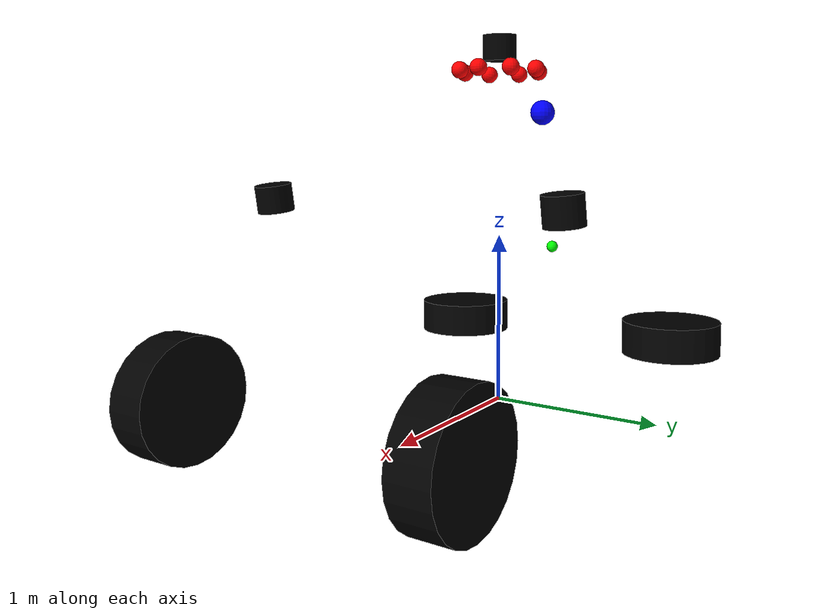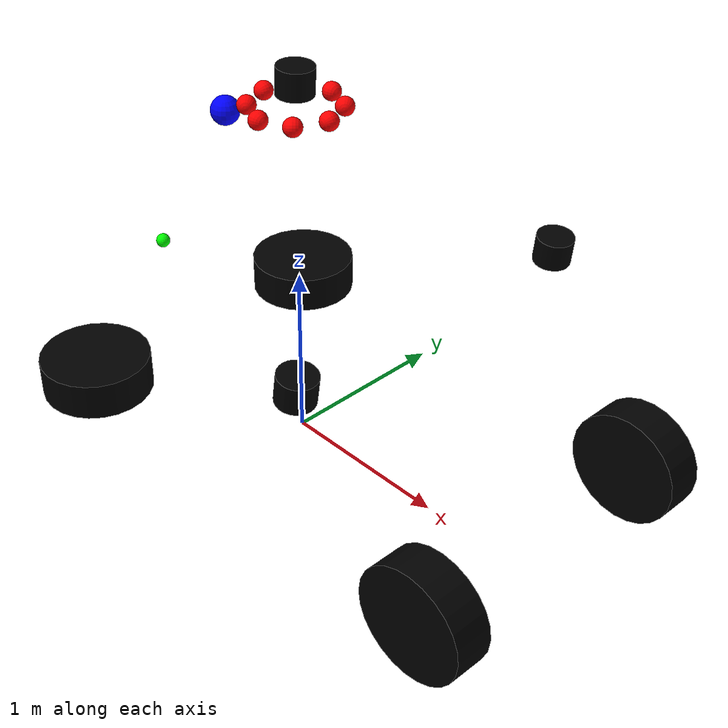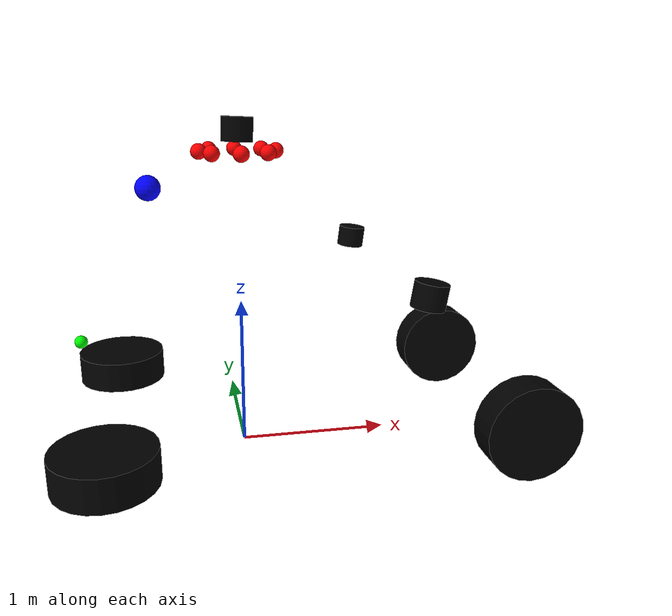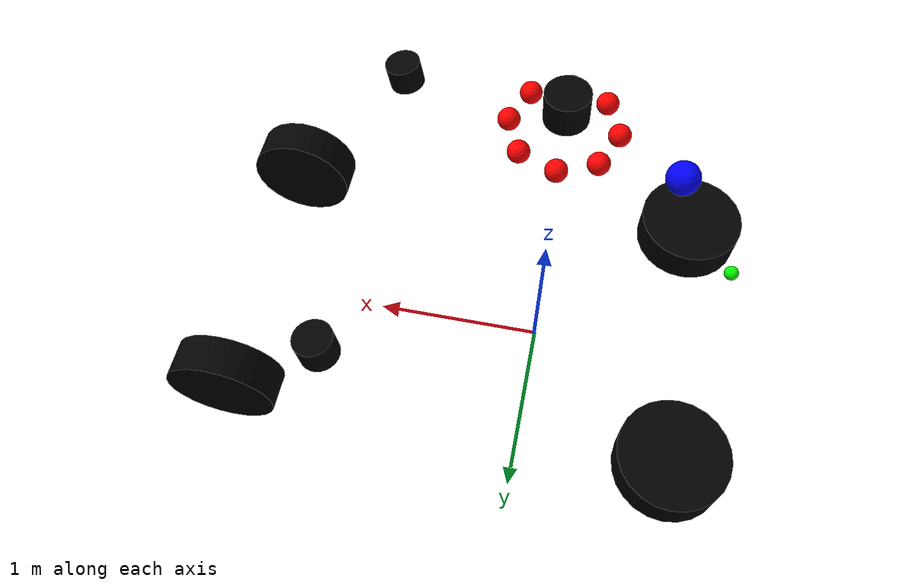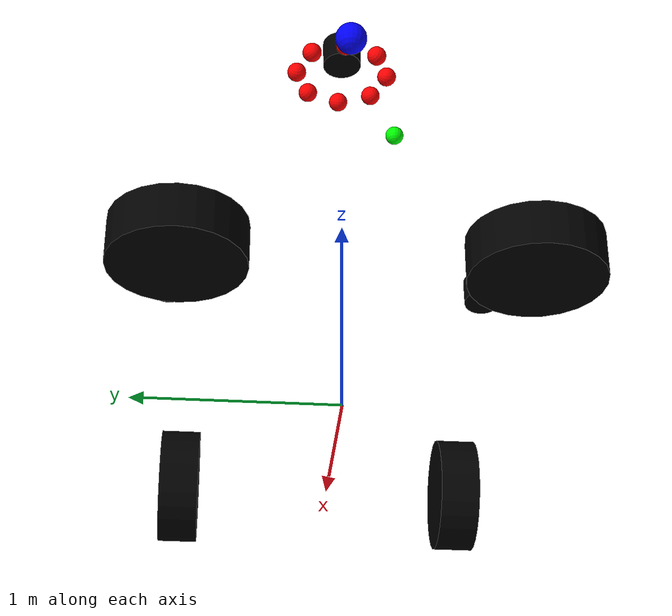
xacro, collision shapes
<?xml version="1.0"?>
<robot name="eve_kia_soul_ev" xmlns:xacro="http://ros.org/wiki/xacro">

  <!-- Base footprint (root of the robot, on the ground plane) -->
  <link name="base_footprint"/>

  <!-- Base link (roof frame, 1.76m above ground) -->
  <link name="base_link"/>

  <joint name="base_footprint_joint" type="fixed">
    <parent link="base_footprint"/>
    <child link="base_link"/>
    <origin xyz="0 0 1.76" rpy="0 0 0"/>
  </joint>

  <!-- Include chassis -->
  <xacro:include filename="eve_chassis.xacro"/>

  <!-- Instantiate chassis with position relative to base_footprint -->
  <!-- x: rear axle is 0.8629m behind sensor mast -->
  <xacro:chassis parent="base_footprint">
    <origin xyz="-0.8629 0 0" rpy="0 0 0"/>
  </xacro:chassis>

  <!-- Include roof mount and sensors -->
  <xacro:include filename="eve_roof_mount.xacro"/>

  <!-- Base link is the roof frame; attach roof sensors directly to base_link -->
  <xacro:roof_mount
    parent="base_link"
    imu_xyz="-0.973762 -0.033626 -1.316802"
    imu_rpy="0 0 -0.083116"/>

  <!-- Nominal lower camera extrinsics (placeholder values; update once measured) -->
  <xacro:lower_cameras parent="base_link"/>

  <!-- Include mirror mounts and sensors -->
  <xacro:include filename="eve_mirror_mount_nw.xacro"/>
  <xacro:include filename="eve_mirror_mount_ne.xacro"/>

  <xacro:mirror_mount_ne parent="lidar_cc">
    <origin xyz="0.908761 -0.968273 -0.833631" rpy="-0.035597 0.105555 -0.609900"/>
  </xacro:mirror_mount_ne>

  <xacro:mirror_mount_nw parent="lidar_cc">
    <origin xyz="1.096882 0.786605 -0.826910" rpy="0.064322 0.051951 0.221166"/>
  </xacro:mirror_mount_nw>

</robot>

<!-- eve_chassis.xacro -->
<robot xmlns:xacro="http://ros.org/wiki/xacro">

  <!-- Vehicle Properties -->
  <xacro:property name="length" value="4.0936"/>
  <xacro:property name="width" value="1.3579"/>
  <xacro:property name="height" value="1.4090"/>
  <xacro:property name="wheel_radius" value="0.31235"/>
  <xacro:property name="wheel_width" value="0.2137"/>
  <xacro:property name="wheelbase" value="2.5667"/>
  <xacro:property name="track_width" value="1.5716"/>

  <!-- Chassis macro - allows parent specification -->
  <xacro:macro name="chassis" params="parent *origin">
    <!-- Chassis Link -->
    <link name="chassis">
      <visual>
        <origin xyz="${wheelbase/2 + 0.065} 0 0" rpy="-${pi/2} 0 ${pi/2}"/>
        <geometry>
          <mesh filename="package://eve_description/meshes/kia_soul_ev.stl" scale="0.01 0.01 0.01"/>
        </geometry>
        <material name="grey">
          <color rgba="0.5 0.5 0.5 1"/>
        </material>
      </visual>
    </link>

    <!-- Joint from parent to chassis -->
    <joint name="base_to_chassis" type="fixed">
      <parent link="${parent}"/>
      <child link="chassis"/>
      <xacro:insert_block name="origin"/>
    </joint>

    <!-- Axle center frames (at wheel-center height) -->
    <link name="rear_axle"/>
    <joint name="rear_axle_joint" type="fixed">
      <parent link="chassis"/>
      <child link="rear_axle"/>
      <origin xyz="0 0 ${wheel_radius}" rpy="0 0 0"/>
    </joint>

    <link name="front_axle"/>
    <joint name="front_axle_joint" type="fixed">
      <parent link="chassis"/>
      <child link="front_axle"/>
      <origin xyz="${wheelbase} 0 ${wheel_radius}" rpy="0 0 0"/>
    </joint>

    <!-- Wheel Macro -->
    <xacro:macro name="wheel" params="parent name y">
      <link name="${name}_wheel">
        <visual>
          <origin xyz="0 0 0" rpy="${pi/2} 0 0"/>
          <geometry>
            <cylinder radius="${wheel_radius}" length="${wheel_width}"/>
          </geometry>
          <material name="black">
            <color rgba="0.0 0.0 0.0 1"/>
          </material>
        </visual>
        <collision>
          <origin xyz="0 0 0" rpy="0 0 0"/>
          <geometry>
            <cylinder radius="${wheel_radius}" length="${wheel_width}"/>
          </geometry>
        </collision>
      </link>
      <joint name="${name}_joint" type="continuous">
        <parent link="${parent}"/>
        <child link="${name}_wheel"/>
        <origin xyz="0 ${y} 0" rpy="0 0 0"/>
        <axis xyz="0 1 0"/>
      </joint>
    </xacro:macro>

    <!-- Steering Wheel Macro -->
    <xacro:macro name="steering_wheel" params="parent name y">
      <link name="${name}_knuckle"/>
      <joint name="${name}_steering_joint" type="revolute">
        <parent link="${parent}"/>
        <child link="${name}_knuckle"/>
        <origin xyz="0 ${y} 0" rpy="${pi/2} 0 0"/>
        <axis xyz="0 0 1"/>
        <limit effort="10" velocity="1" lower="-0.785" upper="0.785"/> <!-- +/-45 deg -->
      </joint>
      <link name="${name}_wheel">
        <visual>
          <origin xyz="0 0 0" rpy="0 0 0"/>
          <geometry>
            <cylinder radius="${wheel_radius}" length="${wheel_width}"/>
          </geometry>
          <material name="black">
            <color rgba="0.0 0.0 0.0 1"/>
          </material>
        </visual>
        <collision>
          <origin xyz="0 0 0" rpy="0 0 0"/>
          <geometry>
            <cylinder radius="${wheel_radius}" length="${wheel_width}"/>
          </geometry>
        </collision>
      </link>
      <joint name="${name}_wheel_joint" type="continuous">
        <parent link="${name}_knuckle"/>
        <child link="${name}_wheel"/>
        <origin xyz="0 0 0" rpy="0 0 0"/>
        <axis xyz="0 1 0"/>
      </joint>
    </xacro:macro>

    <!-- Rear Wheels (children of rear_axle) -->
    <xacro:wheel parent="rear_axle" name="rear_left" y="${track_width/2}"/>
    <xacro:wheel parent="rear_axle" name="rear_right" y="-${track_width/2}"/>

    <!-- Front Wheels with Steering (children of front_axle) -->
    <xacro:steering_wheel parent="front_axle" name="front_left" y="${track_width/2}"/>
    <xacro:steering_wheel parent="front_axle" name="front_right" y="-${track_width/2}"/>
  </xacro:macro>

</robot>

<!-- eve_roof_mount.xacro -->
<robot xmlns:xacro="http://ros.org/wiki/xacro">

  <!-- Roof mount macro - attaches sensors to the provided parent link -->
  <xacro:macro name="roof_mount" params="parent imu_xyz:='-0.5600 0 0' imu_rpy:='0 0 0'">

    <!-- Top LiDAR -->
    <link name="lidar_cc">
      <visual>
        <origin xyz="0 0 0" rpy="0 0 0"/>
        <geometry>
          <cylinder radius="0.1" length="0.15"/>
        </geometry>
        <material name="black">
          <color rgba="0 0 0 1"/>
        </material>
      </visual>
      <collision>
        <origin xyz="0 0 0" rpy="0 0 0"/>
        <geometry>
          <cylinder radius="0.1" length="0.15"/>
        </geometry>
      </collision>
    </link>

    <joint name="lidar_cc_mount_yaw" type="fixed">
      <parent link="${parent}"/>
      <child link="lidar_cc"/>
      <origin xyz="0 0 0.35" rpy="-0.006167 0.042198 0.10472"/>
    </joint>

    <!-- Alias frame to match bag/driver frame_id (lidar_top) -->
    <link name="lidar_top"/>
    <joint name="lidar_top_alias" type="fixed">
      <parent link="lidar_cc"/>
      <child link="lidar_top"/>
      <origin xyz="0 0 0" rpy="0 0 0"/>
    </joint>

    <!-- GPS/IMU Antenna -->
    <link name="gps_imu_antenna">
      <visual>
        <origin xyz="0 0 0" rpy="0 0 0"/>
        <geometry>
          <sphere radius="0.08"/>
        </geometry>
        <material name="blue">
          <color rgba="0.0 0.0 1.0 1"/>
        </material>
      </visual>
      <collision>
        <origin xyz="0 0 0" rpy="0 0 0"/>
        <geometry>
          <sphere radius="0.08"/>
        </geometry>
      </collision>
    </link>

    <joint name="gps_imu_mount_yaw" type="fixed">
      <parent link="${parent}"/>
      <child link="gps_imu_antenna"/>
      <origin xyz="-0.5600 0 0" rpy="0 0 0"/>
    </joint>

    <link name="imu_link">
      <visual>
        <origin xyz="0 0 0" rpy="0 0 0"/>
        <geometry>
          <sphere radius="0.04"/>
        </geometry>
        <material name="green">
          <color rgba="0.0 1.0 0.0 1"/>
        </material>
      </visual>
      <collision>
        <origin xyz="0 0 0" rpy="0 0 0"/>
        <geometry>
          <sphere radius="0.04"/>
        </geometry>
      </collision>
    </link>

    <joint name="imu_mount" type="fixed">
      <parent link="lidar_cc"/>
      <child link="imu_link"/>
      <origin xyz="${imu_xyz}" rpy="${imu_rpy}"/>
    </joint>

    <xacro:property name="camera_z" value="0.217"/>
    <xacro:property name="pano_radius" value="0.240676"/>
    <xacro:property name="pano_cameras" value="8"/>
    <xacro:property name="angle_increment" value="${2*pi/pano_cameras}"/>

    <xacro:macro name="create_camera" params="index name">
      <xacro:property name="angle" value="${-pi/4 - index * angle_increment}"/>
      <xacro:property name="cam_x" value="${pano_radius * cos(angle)}"/>
      <xacro:property name="cam_y" value="${pano_radius * sin(angle)}"/>

      <link name="camera_pano_${name}">
        <visual>
          <origin xyz="0 0 0" rpy="${-pi/2.0} 0 ${-pi/2.0}"/>
          <geometry>
            <sphere radius="0.05"/>
          </geometry>
          <material name="red">
            <color rgba="1.0 0.0 0.0 1"/>
          </material>
        </visual>
        <collision>
          <origin xyz="0 0 0" rpy="${-pi/2.0} 0 ${-pi/2.0}"/>
          <geometry>
            <sphere radius="0.05"/>
          </geometry>
        </collision>
      </link>

      <!-- the additional rotation of -pi/2 is to go from FLU to RDF coordinate systems -->
      <joint name="camera_pano_${name}_mount" type="fixed">
        <parent link="${parent}"/>
        <child link="camera_pano_${name}"/>
        <origin xyz="${cam_x} ${cam_y} ${camera_z}" rpy="${-pi/2} 0 ${angle - pi/2}"/>
      </joint>
    </xacro:macro>

    <xacro:create_camera index="0" name="ne"/>
    <xacro:create_camera index="1" name="ee"/>
    <xacro:create_camera index="2" name="se"/>
    <xacro:create_camera index="3" name="ss"/>
    <xacro:create_camera index="4" name="sw"/>
    <xacro:create_camera index="5" name="ww"/>
    <xacro:create_camera index="6" name="nw"/>
    <xacro:create_camera index="7" name="nn"/>
  </xacro:macro>

  <!-- Lower cameras (nominal extrinsics; update xyz/rpy once measured) -->
  <xacro:macro name="lower_cameras" params="parent">
    <xacro:property name="low_cam_x_forward" value="0.6125"/>
    <xacro:property name="low_cam_x_backward" value="0.775"/>
    <xacro:property name="low_cam_y" value="0.725"/>
    <xacro:property name="low_cam_z" value="0.034"/>

    <!-- Nominal yaws in the vehicle FLU frame (front=+x, left=+y), estimated from sensor_convention -->
    <xacro:property name="yaw_ne" value="${-2.4434}"/>  <!-- ~ -150 deg -->
    <xacro:property name="yaw_se" value="${0.8726}"/>    <!-- ~ -30 deg -->
    <xacro:property name="yaw_sw" value="${2.4434}"/>     <!-- ~ 30 deg -->
    <xacro:property name="yaw_nw" value="${-0.8726}"/>   <!-- ~ 150 deg -->

    <link name="camera_lower_ne"/>
    <joint name="camera_lower_ne_mount" type="fixed">
      <parent link="${parent}"/>
      <child link="camera_lower_ne"/>
      <origin xyz="${low_cam_x_forward} ${-low_cam_y} ${-low_cam_z}" rpy="${-pi/2} 0 ${yaw_ne - pi/2}"/>
    </joint>

    <link name="camera_lower_se"/>
    <joint name="camera_lower_se_mount" type="fixed">
      <parent link="${parent}"/>
      <child link="camera_lower_se"/>
      <origin xyz="${-low_cam_x_backward} ${-low_cam_y} ${-low_cam_z}" rpy="${-pi/2} 0 ${yaw_se - pi}"/>
    </joint>

    <link name="camera_lower_sw"/>
    <joint name="camera_lower_sw_mount" type="fixed">
      <parent link="${parent}"/>
      <child link="camera_lower_sw"/>
      <origin xyz="${-low_cam_x_backward} ${low_cam_y} ${-low_cam_z}" rpy="${-pi/2} 0 ${yaw_sw - pi}"/>
    </joint>

    <link name="camera_lower_nw"/>
    <joint name="camera_lower_nw_mount" type="fixed">
      <parent link="${parent}"/>
      <child link="camera_lower_nw"/>
      <origin xyz="${low_cam_x_forward} ${low_cam_y} ${-low_cam_z}" rpy="${-pi/2} 0 ${yaw_nw + pi/2}"/>
    </joint>
  </xacro:macro>

</robot>

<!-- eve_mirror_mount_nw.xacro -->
<robot xmlns:xacro="http://ros.org/wiki/xacro">

  <!-- Mirror mount macro - allows parent specification -->
  <xacro:macro name="mirror_mount_ne" params="parent *origin">
    <!-- Mirror mount for all sensors -->
    <link name="mirror_mount_ne"/>
    <joint name="mirror_mount_ne_joint" type="fixed">
      <parent link="${parent}"/>
      <child link="mirror_mount_ne"/>
      <xacro:insert_block name="origin"/>
    </joint>

    <!-- Right LiDAR -->
    <link name="lidar_ne">
      <visual>
        <origin xyz="0 0 0" rpy="0 0 0"/>
        <geometry>
          <cylinder radius="0.1" length="0.15"/>
        </geometry>
        <material name="black">
          <color rgba="0 0 0 1"/>
        </material>
      </visual>
      <collision>
        <origin xyz="0 0 0" rpy="0 0 0"/>
        <geometry>
          <cylinder radius="0.1" length="0.15"/>
        </geometry>
      </collision>
    </link>

    <joint name="lidar_ne_mount_yaw" type="fixed">
      <parent link="mirror_mount_ne"/>
      <child link="lidar_ne"/>
      <origin xyz="0 0 0" rpy="0 0 0"/>
    </joint>

  </xacro:macro>

</robot>

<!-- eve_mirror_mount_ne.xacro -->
<robot xmlns:xacro="http://ros.org/wiki/xacro">

  <!-- Mirror mount macro - allows parent specification -->
  <xacro:macro name="mirror_mount_nw" params="parent *origin">
    <!-- Mirror mount for all sensors -->
    <link name="mirror_mount_nw"/>
    <joint name="mirror_mount_nw_joint" type="fixed">
      <parent link="${parent}"/>
      <child link="mirror_mount_nw"/>
      <xacro:insert_block name="origin"/>
    </joint>

    <!-- Left LiDAR -->
    <link name="lidar_nw">
      <visual>
        <origin xyz="0 0 0" rpy="0 0 0"/>
        <geometry>
          <cylinder radius="0.1" length="0.15"/>
        </geometry>
        <material name="black">
          <color rgba="0 0 0 1"/>
        </material>
      </visual>
      <collision>
        <origin xyz="0 0 0" rpy="0 0 0"/>
        <geometry>
          <cylinder radius="0.1" length="0.15"/>
        </geometry>
      </collision>
    </link>

    <joint name="lidar_nw_mount_yaw" type="fixed">
      <parent link="mirror_mount_nw"/>
      <child link="lidar_nw"/>
      <origin xyz="0 0 0" rpy="0 0 0"/>
    </joint>

  </xacro:macro>

</robot>
